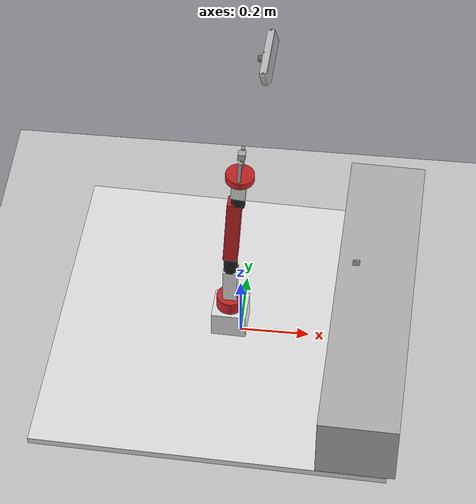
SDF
<sdf version="1.6">
 <world name="grasp_test_world">
  <light name="sun" type="directional">
   <pose>0 0 10 0 -0 0</pose>
   <diffuse>0.8 0.8 0.8 1</diffuse>
   <specular>0.1 0.1 0.1 1</specular>
   <attenuation>
    <range>1000</range>
    <constant>0.9</constant>
    <linear>0.01</linear>
    <quadratic>0.001</quadratic>
   </attenuation>
   <direction>-0.5 0.5 -1</direction>
  </light>
  <model name="ground_plane">
   <static>1</static>
   <link name="link">
    <collision name="collision">
     <geometry><plane><normal>0 0 1</normal><size>100 100</size></plane></geometry>
     <surface><friction><ode><mu>100</mu><mu2>50</mu2></ode></friction></surface>
    </collision>
    <visual name="visual">
     <cast_shadows>0</cast_shadows>
     <geometry><plane><normal>0 0 1</normal><size>100 100</size></plane></geometry>
     <material>
      <script><uri>file://media/materials/scripts/gazebo.material</uri><name>Gazebo/Grey</name></script>
     </material>
    </visual>
   </link>
  </model>
  <gravity>0 0 -9.8</gravity>
  <magnetic_field>6e-06 2.3e-05 -4.2e-05</magnetic_field>
  <atmosphere type="adiabatic"/>
  <physics name="default_physics" default="0" type="ode">
   <max_step_size>0.001</max_step_size>
   <real_time_factor>1</real_time_factor>
   <real_time_update_rate>1000</real_time_update_rate>
  </physics>
  <scene><ambient>0.4 0.4 0.4 1</ambient><background>0.7 0.7 0.7 1</background><shadows>1</shadows></scene>
  <spherical_coordinates>
   <surface_model>EARTH_WGS84</surface_model>
   <latitude_deg>0</latitude_deg>
   <longitude_deg>0</longitude_deg>
   <elevation>0</elevation>
   <heading_deg>0</heading_deg>
  </spherical_coordinates>
  <model name="seven_dof_arm">
   <link name="base_link">
    <inertial>
     <pose>0.01744 0.000111 0.184969 0 -0 0</pose>
     <mass>1.2247</mass>
     <inertia>
      <ixx>1.18654</ixx>
      <ixy>-1.12128e-05</ixy>
      <ixz>-0.0175817</ixz>
      <iyy>0.688184</iyy>
      <iyz>-0.000110308</iyz>
      <izz>1.00172</izz>
     </inertia>
    </inertial>
    <collision name="base_link_collision">
     <pose>0 0 0 1.57079 -0 0</pose>
     <geometry><box><size>0.1 0.1 0.1</size></box></geometry>
    </collision>
    <collision name="base_link_fixed_joint_lump__bottom_link_collision_1">
     <pose>0 0 -0.04 0 -0 0</pose>
     <geometry><box><size>1 1 0.02</size></box></geometry>
    </collision>
    <visual name="base_link_visual">
     <pose>0 0 0 1.57079 -0 0</pose>
     <geometry><box><size>0.1 0.1 0.1</size></box></geometry>
     <material>
      <script><name>Gazebo/White</name><uri>file://media/materials/scripts/gazebo.material</uri></script>
     </material>
    </visual>
    <visual name="base_link_fixed_joint_lump__bottom_link_visual_1">
     <pose>0 0 -0.04 0 -0 0</pose>
     <geometry><box><size>1 1 0.02</size></box></geometry>
     <material>
      <script><name>Gazebo/White</name><uri>file://media/materials/scripts/gazebo.material</uri></script>
     </material>
    </visual>
    <visual name="base_link_fixed_joint_lump__rgbd_camera_link_visual_2">
     <pose>0.1 0 1 0 1.309 0</pose>
     <geometry>
      <mesh>
       <scale>1 1 1</scale>
       <uri>/home/kobuki/ROS/catkin_ws/src/seven_dof_arm/dof7_arm_description/meshes/sensors/xtion_pro_live/xtion_pro_live.dae</uri>
      </mesh>
     </geometry>
     <material><script><uri>__default__</uri><name>__default__</name></script></material>
    </visual>
    <sensor name="rgbd_camera_frame_sensor" type="depth">
     <always_on>1</always_on>
     <update_rate>6</update_rate>
     <camera name="__default__">
      <horizontal_fov>1.01229</horizontal_fov>
      <image><format>R8G8B8</format><width>320</width><height>240</height></image>
      <clip><near>0.05</near><far>4</far></clip>
     </camera>
     <plugin name="rgbd_camera_frame_controller" filename="libgazebo_ros_openni_kinect.so">
      <alwaysOn>true</alwaysOn>
      <updateRate>6.0</updateRate>
      <cameraName>rgbd_camera</cameraName>
      <imageTopicName>ir/image_raw</imageTopicName>
      <cameraInfoTopicName>ir/camera_info</cameraInfoTopicName>
      <depthImageTopicName>depth/image_raw</depthImageTopicName>
      <depthImageCameraInfoTopicName>depth/camera_info</depthImageCameraInfoTopicName>
      <pointCloudTopicName>depth/points</pointCloudTopicName>
      <frameName>rgbd_camera_optical_frame</frameName>
      <pointCloudCutoff>0.05</pointCloudCutoff>
      <pointCloudCutoffMax>5</pointCloudCutoffMax>
      <rangeMax>4.0</rangeMax>
      <robotNamespace>/</robotNamespace>
     </plugin>
     <pose>0.1 0 1 0 1.309 0</pose>
    </sensor>
    <sensor name="rgbd_camera_frame_sensor" type="depth">
     <always_on>1</always_on>
     <update_rate>6</update_rate>
     <camera name="__default__">
      <horizontal_fov>1.01229</horizontal_fov>
      <image><format>R8G8B8</format><width>320</width><height>240</height></image>
      <clip><near>0.05</near><far>4</far></clip>
     </camera>
     <plugin name="rgbd_camera_frame_controller" filename="libgazebo_ros_openni_kinect.so">
      <alwaysOn>true</alwaysOn>
      <updateRate>6.0</updateRate>
      <cameraName>rgbd_camera</cameraName>
      <imageTopicName>rgb/image_raw</imageTopicName>
      <cameraInfoTopicName>rgb/camera_info</cameraInfoTopicName>
      <pointCloudTopicName>rgb/points</pointCloudTopicName>
      <depthImageTopicName>depth/image_raw</depthImageTopicName>
      <depthImageCameraInfoTopicName>depth/camera_info</depthImageCameraInfoTopicName>
      <frameName>rgbd_camera_optical_frame</frameName>
      <pointCloudCutoff>0.05</pointCloudCutoff>
      <pointCloudCutoffMax>5</pointCloudCutoffMax>
      <rangeMax>4.0</rangeMax>
      <robotNamespace>/</robotNamespace>
     </plugin>
     <pose>0.1 0 1 0 1.309 0</pose>
    </sensor>
   </link>
   <link name="shoulder_pan_link">
    <pose>0 0 0.05 3.14159 1.57079 3.14159</pose>
    <inertial>
     <mass>1</mass>
     <inertia><ixx>1</ixx><ixy>0</ixy><ixz>0</ixz><iyy>0.5</iyy><iyz>0</iyz><izz>1</izz></inertia>
    </inertial>
    <collision name="shoulder_pan_link_collision">
     <pose>0 0 0 3.14159 1.57079 3.14159</pose>
     <geometry><cylinder><length>0.08</length><radius>0.04</radius></cylinder></geometry>
    </collision>
    <visual name="shoulder_pan_link_visual">
     <pose>0 0 0 3.14159 1.57079 3.14159</pose>
     <geometry><cylinder><length>0.08</length><radius>0.04</radius></cylinder></geometry>
     <material>
      <script><name>Gazebo/Red</name><uri>file://media/materials/scripts/gazebo.material</uri></script>
     </material>
    </visual>
   </link>
   <joint name="shoulder_pan_joint" type="revolute">
    <child>shoulder_pan_link</child>
    <parent>base_link</parent>
    <axis>
     <xyz>-1e-06 0 1</xyz>
     <limit><lower>-2.61799</lower><upper>1.98395</upper><effort>300</effort><velocity>1</velocity></limit>
     <dynamics>
      <damping>50</damping>
      <friction>1</friction>
      <spring_reference>0</spring_reference>
      <spring_stiffness>0</spring_stiffness>
     </dynamics>
     <use_parent_model_frame>1</use_parent_model_frame>
    </axis>
   </joint>
   <link name="shoulder_pitch_link">
    <pose>-0 0.0021 0.091 0 1e-06 1.5708</pose>
    <inertial>
     <mass>1</mass>
     <inertia><ixx>1</ixx><ixy>0</ixy><ixz>0</ixz><iyy>0.5</iyy><iyz>0</iyz><izz>1</izz></inertia>
    </inertial>
    <collision name="shoulder_pitch_link_collision">
     <pose>-0.002 0 0.04 3.14159 1.57079 3.14159</pose>
     <geometry><box><size>0.14 0.04 0.04</size></box></geometry>
    </collision>
    <visual name="shoulder_pitch_link_visual">
     <pose>-0.002 0 0.04 3.14159 1.57079 3.14159</pose>
     <geometry><box><size>0.14 0.04 0.04</size></box></geometry>
     <material>
      <script><name>Gazebo/White</name><uri>file://media/materials/scripts/gazebo.material</uri></script>
     </material>
    </visual>
   </link>
   <joint name="shoulder_pitch_joint" type="revolute">
    <child>shoulder_pitch_link</child>
    <parent>shoulder_pan_link</parent>
    <axis>
     <xyz>0 1 -1e-06</xyz>
     <limit><lower>-1.19963</lower><upper>1.89994</upper><effort>300</effort><velocity>1</velocity></limit>
     <dynamics>
      <damping>50</damping>
      <friction>1</friction>
      <spring_reference>0</spring_reference>
      <spring_stiffness>0</spring_stiffness>
     </dynamics>
     <use_parent_model_frame>1</use_parent_model_frame>
    </axis>
   </joint>
   <link name="elbow_roll_link">
    <pose>-0 0.0001 0.2116 -0.785403 1.57079 -1.57079</pose>
    <inertial>
     <mass>1</mass>
     <inertia><ixx>1</ixx><ixy>0</ixy><ixz>0</ixz><iyy>0.5</iyy><iyz>0</iyz><izz>1</izz></inertia>
    </inertial>
    <collision name="elbow_roll_link_collision">
     <pose>-0.015 0 -0 3.14159 1.57079 3.14159</pose>
     <geometry><cylinder><length>0.06</length><radius>0.02</radius></cylinder></geometry>
    </collision>
    <visual name="elbow_roll_link_visual">
     <pose>-0.015 0 -0 3.14159 1.57079 3.14159</pose>
     <geometry><cylinder><length>0.06</length><radius>0.02</radius></cylinder></geometry>
     <material>
      <script><name>Gazebo/Black</name><uri>file://media/materials/scripts/gazebo.material</uri></script>
     </material>
    </visual>
   </link>
   <joint name="elbow_roll_joint" type="revolute">
    <child>elbow_roll_link</child>
    <parent>shoulder_pitch_link</parent>
    <axis>
     <xyz>0 0 1</xyz>
     <limit><lower>-2.61799</lower><upper>0.705631</upper><effort>300</effort><velocity>1</velocity></limit>
     <dynamics>
      <damping>50</damping>
      <friction>1</friction>
      <spring_reference>0</spring_reference>
      <spring_stiffness>0</spring_stiffness>
     </dynamics>
     <use_parent_model_frame>1</use_parent_model_frame>
    </axis>
   </joint>
   <link name="elbow_pitch_link">
    <pose>-0 0.0001 0.2466 -3.08659 1e-06 1.5708</pose>
    <inertial>
     <mass>1</mass>
     <inertia><ixx>1</ixx><ixy>0</ixy><ixz>0</ixz><iyy>0.5</iyy><iyz>0</iyz><izz>1</izz></inertia>
    </inertial>
    <collision name="elbow_pitch_link_collision">
     <pose>0 0 -0.12 3.14159 1.57079 3.14159</pose>
     <geometry><box><size>0.22 0.04 0.04</size></box></geometry>
    </collision>
    <visual name="elbow_pitch_link_visual">
     <pose>0 0 -0.12 3.14159 1.57079 3.14159</pose>
     <geometry><box><size>0.22 0.04 0.04</size></box></geometry>
     <material>
      <script><name>Gazebo/Red</name><uri>file://media/materials/scripts/gazebo.material</uri></script>
     </material>
    </visual>
   </link>
   <joint name="elbow_pitch_joint" type="revolute">
    <child>elbow_pitch_link</child>
    <parent>elbow_roll_link</parent>
    <axis>
     <xyz>-3e-06 1 -1e-06</xyz>
     <limit><lower>-1.59534</lower><upper>1.93282</upper><effort>300</effort><velocity>1</velocity></limit>
     <dynamics>
      <damping>50</damping>
      <friction>1</friction>
      <spring_reference>0</spring_reference>
      <spring_stiffness>0</spring_stiffness>
     </dynamics>
     <use_parent_model_frame>1</use_parent_model_frame>
    </axis>
   </joint>
   <link name="wrist_roll_link">
    <pose>0.021721 0.000101 0.49378 1.5708 -1.5158 3e-06</pose>
    <inertial>
     <mass>1</mass>
     <inertia><ixx>1</ixx><ixy>0</ixy><ixz>0</ixz><iyy>0.5</iyy><iyz>0</iyz><izz>1</izz></inertia>
    </inertial>
    <collision name="wrist_roll_link_collision">
     <pose>0 0 0 3.14159 1.57079 3.14159</pose>
     <geometry><cylinder><length>0.06</length><radius>0.02</radius></cylinder></geometry>
    </collision>
    <visual name="wrist_roll_link_visual">
     <pose>0 0 0 3.14159 1.57079 3.14159</pose>
     <geometry><cylinder><length>0.06</length><radius>0.02</radius></cylinder></geometry>
     <material>
      <script><name>Gazebo/Black</name><uri>file://media/materials/scripts/gazebo.material</uri></script>
     </material>
    </visual>
   </link>
   <joint name="wrist_roll_joint" type="revolute">
    <child>wrist_roll_link</child>
    <parent>elbow_pitch_link</parent>
    <axis>
     <xyz>0.054972 0 0.998488</xyz>
     <limit><lower>-2.61799</lower><upper>2.61288</upper><effort>300</effort><velocity>1</velocity></limit>
     <dynamics>
      <damping>50</damping>
      <friction>1</friction>
      <spring_reference>0</spring_reference>
      <spring_stiffness>0</spring_stiffness>
     </dynamics>
     <use_parent_model_frame>1</use_parent_model_frame>
    </axis>
   </joint>
   <link name="wrist_pitch_link">
    <pose>0.021721 1e-06 0.49378 0.055 -1e-06 1.5708</pose>
    <inertial>
     <mass>1</mass>
     <inertia><ixx>1</ixx><ixy>0</ixy><ixz>0</ixz><iyy>0.5</iyy><iyz>0</iyz><izz>1</izz></inertia>
    </inertial>
    <collision name="wrist_pitch_link_collision">
     <pose>0 0 0.04 3.14159 1.57079 3.14159</pose>
     <geometry><box><size>0.06 0.04 0.04</size></box></geometry>
    </collision>
    <visual name="wrist_pitch_link_visual">
     <pose>0 0 0.04 3.14159 1.57079 3.14159</pose>
     <geometry><box><size>0.06 0.04 0.04</size></box></geometry>
     <material>
      <script><name>Gazebo/White</name><uri>file://media/materials/scripts/gazebo.material</uri></script>
     </material>
    </visual>
   </link>
   <joint name="wrist_pitch_joint" type="revolute">
    <child>wrist_pitch_link</child>
    <parent>wrist_roll_link</parent>
    <axis>
     <xyz>-5e-06 1 1e-06</xyz>
     <limit><lower>-1.59534</lower><upper>1.98395</upper><effort>300</effort><velocity>1</velocity></limit>
     <dynamics>
      <damping>50</damping>
      <friction>1</friction>
      <spring_reference>0</spring_reference>
      <spring_stiffness>0</spring_stiffness>
     </dynamics>
     <use_parent_model_frame>1</use_parent_model_frame>
    </axis>
   </joint>
   <link name="gripper_roll_link">
    <pose>0.026119 0 0.573659 -1e-06 -1.5158 3e-06</pose>
    <inertial>
     <pose>8e-06 0 0 0 -0 0</pose>
     <mass>1.0001</mass>
     <inertia><ixx>2</ixx><ixy>0</ixy><ixz>0</ixz><iyy>100.5</iyy><iyz>0</iyz><izz>2</izz></inertia>
    </inertial>
    <collision name="gripper_roll_link_collision">
     <pose>0 0 0 3.14159 1.57079 3.14159</pose>
     <geometry><cylinder><length>0.02</length><radius>0.04</radius></cylinder></geometry>
    </collision>
    <visual name="gripper_roll_link_visual">
     <pose>0 0 0 3.14159 1.57079 3.14159</pose>
     <geometry><cylinder><length>0.02</length><radius>0.04</radius></cylinder></geometry>
     <material>
      <script><name>Gazebo/Red</name><uri>file://media/materials/scripts/gazebo.material</uri></script>
     </material>
    </visual>
    <visual name="gripper_roll_link_fixed_joint_lump__grasping_frame_visual_1">
     <pose>0.08 0 0 0 -0 0</pose>
     <geometry><box><size>0.02 0.02 0.02</size></box></geometry>
    </visual>
   </link>
   <joint name="gripper_roll_joint" type="revolute">
    <child>gripper_roll_link</child>
    <parent>wrist_pitch_link</parent>
    <axis>
     <xyz>0.054972 0 0.998488</xyz>
     <limit><lower>-2.61799</lower><upper>2.61288</upper><effort>300</effort><velocity>1</velocity></limit>
     <dynamics>
      <damping>50</damping>
      <friction>1</friction>
      <spring_reference>0</spring_reference>
      <spring_stiffness>0</spring_stiffness>
     </dynamics>
     <use_parent_model_frame>1</use_parent_model_frame>
    </axis>
   </joint>
   <link name="gripper_finger_link1">
    <pose>0.026119 0 0.573659 -1e-06 -1.5158 3e-06</pose>
    <inertial>
     <mass>1</mass>
     <inertia><ixx>1</ixx><ixy>0</ixy><ixz>0</ixz><iyy>0.5</iyy><iyz>0</iyz><izz>1</izz></inertia>
    </inertial>
    <visual name="gripper_finger_link1_visual">
     <pose>0.04 -0.03 0 0 -0 0</pose>
     <geometry><box><size>0.08 0.01 0.01</size></box></geometry>
    </visual>
   </link>
   <joint name="finger_joint1" type="prismatic">
    <child>gripper_finger_link1</child>
    <parent>gripper_roll_link</parent>
    <axis>
     <xyz>-1e-06 1 -0</xyz>
     <limit><lower>0</lower><upper>0.03</upper><effort>100</effort><velocity>1</velocity></limit>
     <dynamics>
      <damping>50</damping>
      <friction>1</friction>
      <spring_reference>0</spring_reference>
      <spring_stiffness>0</spring_stiffness>
     </dynamics>
     <use_parent_model_frame>1</use_parent_model_frame>
    </axis>
   </joint>
   <link name="gripper_finger_link2">
    <pose>0.026119 0 0.573659 -1e-06 -1.5158 3e-06</pose>
    <inertial>
     <mass>1</mass>
     <inertia><ixx>1</ixx><ixy>0</ixy><ixz>0</ixz><iyy>0.5</iyy><iyz>0</iyz><izz>1</izz></inertia>
    </inertial>
    <visual name="gripper_finger_link2_visual">
     <pose>0.04 0.03 0 0 -0 0</pose>
     <geometry><box><size>0.08 0.01 0.01</size></box></geometry>
    </visual>
   </link>
   <joint name="finger_joint2" type="prismatic">
    <child>gripper_finger_link2</child>
    <parent>gripper_roll_link</parent>
    <axis>
     <xyz>-1e-06 1 -0</xyz>
     <limit><lower>-0.03</lower><upper>0</upper><effort>1</effort><velocity>1</velocity></limit>
     <dynamics>
      <damping>50</damping>
      <friction>1</friction>
      <spring_reference>0</spring_reference>
      <spring_stiffness>0</spring_stiffness>
     </dynamics>
     <use_parent_model_frame>1</use_parent_model_frame>
    </axis>
   </joint>
   <static>0</static>
   <plugin name="gazebo_ros_control" filename="libgazebo_ros_control.so">
    <robotNamespace>/seven_dof_arm</robotNamespace>
    <robotSimType>gazebo_ros_control/DefaultRobotHWSim</robotSimType>
   </plugin>
   <pose>-0.030663 0.005097 0.049991 1e-06 0 -0.033155</pose>
  </model>
  <model name="table">
   <static>1</static>
   <link name="link">
    <collision name="surface">
     <pose>0 0 0.15 0 -0 0</pose>
     <geometry><box><size>0.22 1 0.2</size></box></geometry>
     <surface><friction><ode><mu>0.1</mu><mu2>0.1</mu2></ode></friction></surface>
    </collision>
    <visual name="visual1">
     <pose>0 0 0.15 0 -0 0</pose>
     <geometry><box><size>0.22 1 0.2</size></box></geometry>
    </visual>
   </link>
   <pose>0.380124 -0.025568 -0.004031 0 0 -0.029797</pose>
  </model>
  <model name="object_0">
   <link name="link">
    <inertial>
     <pose>0 0 0.3 0 -0 0</pose>
     <mass>0.1</mass>
     <inertia><ixx>0.00058</ixx><ixy>0</ixy><ixz>0</ixz><iyy>0.00058</iyy><iyz>0</iyz><izz>0.00019</izz></inertia>
    </inertial>
    <collision name="object">
     <pose>0 0 0.3 0 -0 0</pose>
     <geometry><box><size>0.02 0.01 0.02</size></box></geometry>
     <surface>
      <friction><ode><mu>1</mu><mu2>1</mu2></ode></friction>
      <contact><ode><kp>1e+07</kp><kd>1</kd><min_depth>0.001</min_depth><max_vel>0.01</max_vel></ode></contact>
     </surface>
    </collision>
    <visual name="visual1">
     <pose>0 0 0.3 0 -0 0</pose>
     <geometry><box><size>0.02 0.005 0.02</size></box></geometry>
    </visual>
   </link>
   <pose>0.323852 0.063572 -0.044713 0.000656 -0.000966 1.4e-05</pose>
  </model>
 </world>
</sdf>
